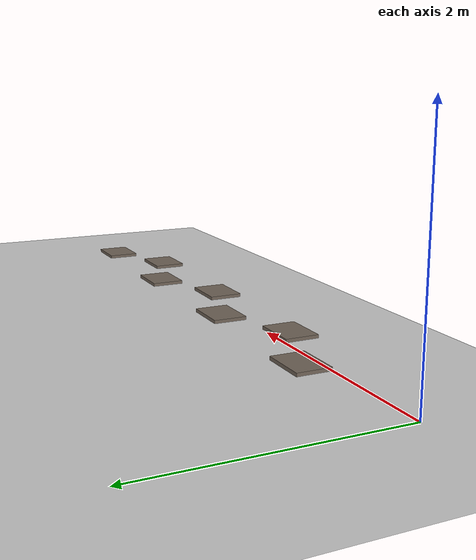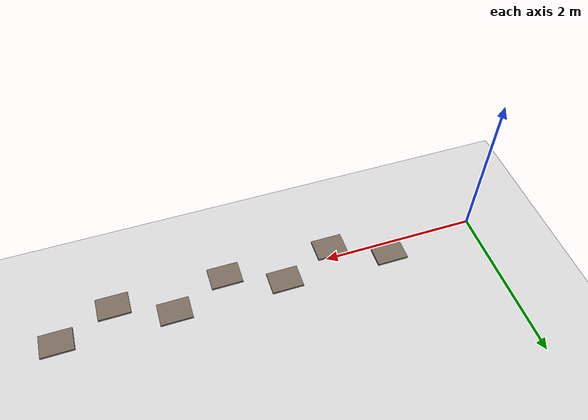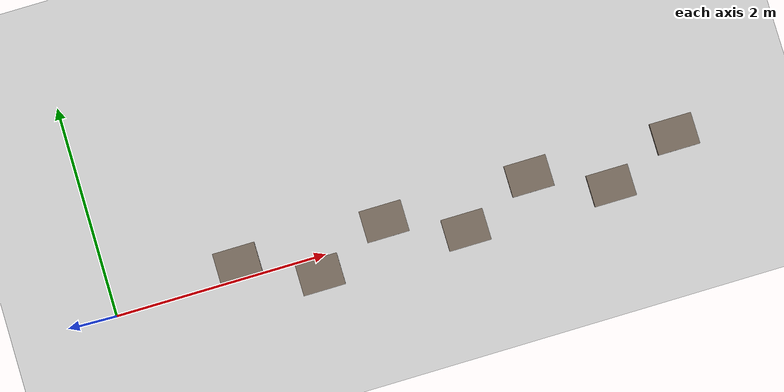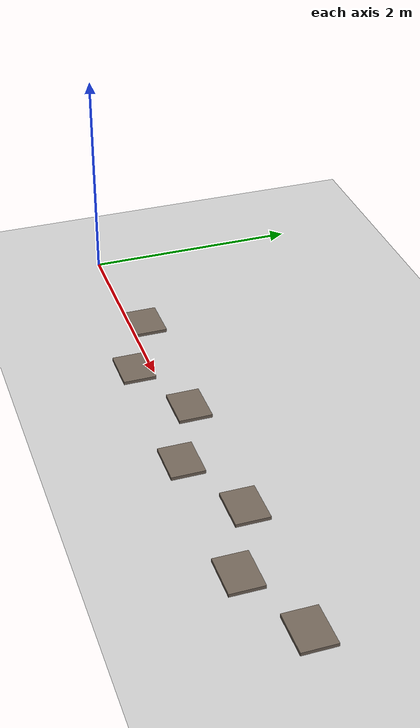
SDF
<?xml version="1.0"?>
<sdf version="1.9">
  <world name="quadruped_rough">
    <physics name="1ms" type="ignored">
      <max_step_size>0.001</max_step_size>
      <real_time_factor>1.0</real_time_factor>
    </physics>

    <plugin filename="gz-sim-physics-system"
            name="gz::sim::systems::Physics"/>
    <plugin filename="gz-sim-user-commands-system"
            name="gz::sim::systems::UserCommands"/>
    <plugin filename="gz-sim-scene-broadcaster-system"
            name="gz::sim::systems::SceneBroadcaster"/>
    <plugin filename="gz-sim-sensors-system"
            name="gz::sim::systems::Sensors">
      <render_engine>ogre2</render_engine>
    </plugin>
    <plugin filename="gz-sim-contact-system"
            name="gz::sim::systems::Contact"/>

    <scene>
      <ambient>1 1 1 1</ambient>
      <background>0.3 0.7 0.9 1</background>
      <shadows>false</shadows>
    </scene>

    <light type="directional" name="sun">
      <pose>0 0 10 0 0 0</pose>
      <diffuse>0.8 0.8 0.8 1</diffuse>
      <specular>0.2 0.2 0.2 1</specular>
      <direction>-0.5 0.1 -0.9</direction>
    </light>

    <model name="ground_plane">
      <static>true</static>
      <link name="link">
        <collision name="collision">
          <geometry>
            <plane><normal>0 0 1</normal><size>100 100</size></plane>
          </geometry>
        </collision>
        <visual name="visual">
          <geometry>
            <plane><normal>0 0 1</normal><size>100 100</size></plane>
          </geometry>
          <material>
            <ambient>0.8 0.8 0.8 1</ambient>
            <diffuse>0.8 0.8 0.8 1</diffuse>
          </material>
        </visual>
      </link>
    </model>

    <model name="laje_1">
      <static>true</static>
      <pose>1.2 0.15 0.015 0 0 0</pose>
      <link name="link">
        <collision name="collision">
          <geometry><box><size>0.4 0.3 0.03</size></box></geometry>
        </collision>
        <visual name="visual">
          <geometry><box><size>0.4 0.3 0.03</size></box></geometry>
          <material>
            <ambient>0.45 0.4 0.35 1</ambient>
            <diffuse>0.45 0.4 0.35 1</diffuse>
          </material>
        </visual>
      </link>
    </model>

    <model name="laje_2">
      <static>true</static>
      <pose>1.9 -0.16 0.015 0 0 0</pose>
      <link name="link">
        <collision name="collision">
          <geometry><box><size>0.4 0.3 0.03</size></box></geometry>
        </collision>
        <visual name="visual">
          <geometry><box><size>0.4 0.3 0.03</size></box></geometry>
          <material>
            <ambient>0.45 0.4 0.35 1</ambient>
            <diffuse>0.45 0.4 0.35 1</diffuse>
          </material>
        </visual>
      </link>
    </model>

    <model name="laje_3">
      <static>true</static>
      <pose>2.6 0.14 0.015 0 0 0</pose>
      <link name="link">
        <collision name="collision">
          <geometry><box><size>0.4 0.3 0.03</size></box></geometry>
        </collision>
        <visual name="visual">
          <geometry><box><size>0.4 0.3 0.03</size></box></geometry>
          <material>
            <ambient>0.45 0.4 0.35 1</ambient>
            <diffuse>0.45 0.4 0.35 1</diffuse>
          </material>
        </visual>
      </link>
    </model>

    <model name="laje_4">
      <static>true</static>
      <pose>3.3 -0.15 0.015 0 0 0</pose>
      <link name="link">
        <collision name="collision">
          <geometry><box><size>0.4 0.3 0.03</size></box></geometry>
        </collision>
        <visual name="visual">
          <geometry><box><size>0.4 0.3 0.03</size></box></geometry>
          <material>
            <ambient>0.45 0.4 0.35 1</ambient>
            <diffuse>0.45 0.4 0.35 1</diffuse>
          </material>
        </visual>
      </link>
    </model>

    <model name="laje_5">
      <static>true</static>
      <pose>4.0 0.16 0.015 0 0 0</pose>
      <link name="link">
        <collision name="collision">
          <geometry><box><size>0.4 0.3 0.03</size></box></geometry>
        </collision>
        <visual name="visual">
          <geometry><box><size>0.4 0.3 0.03</size></box></geometry>
          <material>
            <ambient>0.45 0.4 0.35 1</ambient>
            <diffuse>0.45 0.4 0.35 1</diffuse>
          </material>
        </visual>
      </link>
    </model>

    <model name="laje_6">
      <static>true</static>
      <pose>4.7 -0.14 0.015 0 0 0</pose>
      <link name="link">
        <collision name="collision">
          <geometry><box><size>0.4 0.3 0.03</size></box></geometry>
        </collision>
        <visual name="visual">
          <geometry><box><size>0.4 0.3 0.03</size></box></geometry>
          <material>
            <ambient>0.45 0.4 0.35 1</ambient>
            <diffuse>0.45 0.4 0.35 1</diffuse>
          </material>
        </visual>
      </link>
    </model>

    <model name="laje_7">
      <static>true</static>
      <pose>5.4 0.15 0.015 0 0 0</pose>
      <link name="link">
        <collision name="collision">
          <geometry><box><size>0.4 0.3 0.03</size></box></geometry>
        </collision>
        <visual name="visual">
          <geometry><box><size>0.4 0.3 0.03</size></box></geometry>
          <material>
            <ambient>0.45 0.4 0.35 1</ambient>
            <diffuse>0.45 0.4 0.35 1</diffuse>
          </material>
        </visual>
      </link>
    </model>
  </world>
</sdf>
